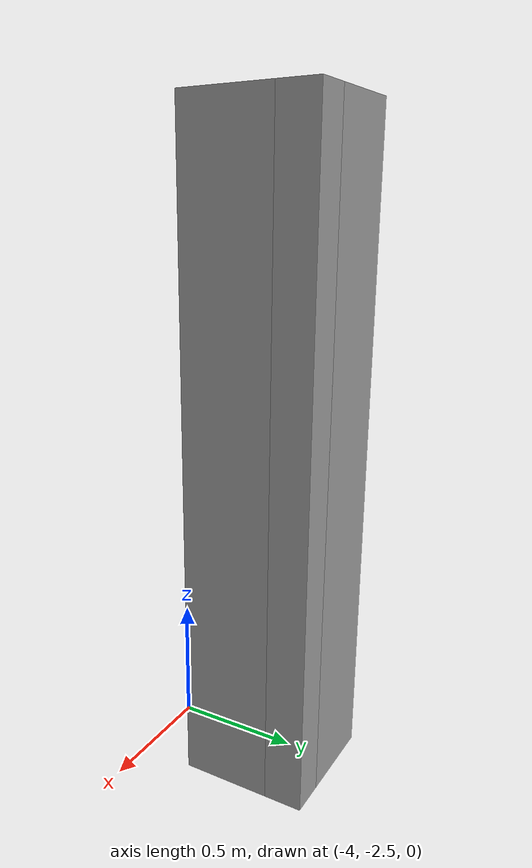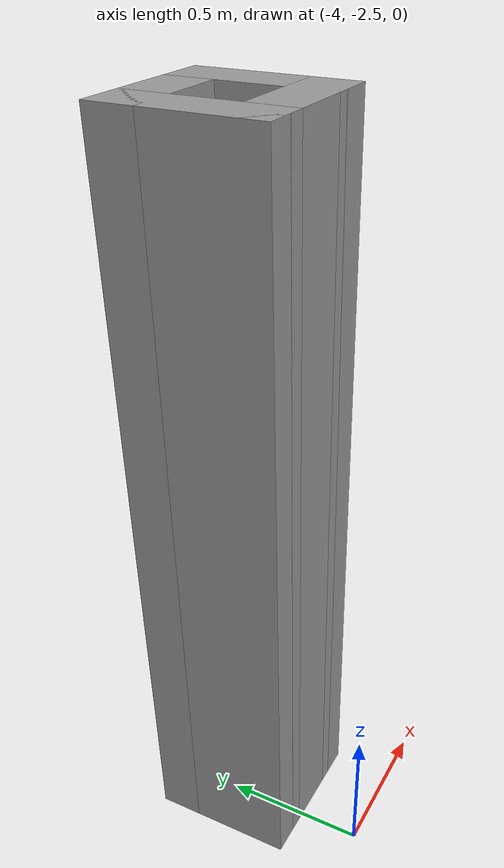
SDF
<?xml version='1.0'?>
<sdf version='1.6'>
  <model name='object_2'>
    <pose frame=''>-3.925 -2.035 0 0 -0 0</pose>
    <link name='Wall_10'>
      <collision name='Wall_10_Collision'>
        <geometry>
          <box>
            <size>0.5 0.15 2.5</size>
          </box>
        </geometry>
        <pose frame=''>0 0 1.25 0 -0 0</pose>
      </collision>
      <visual name='Wall_10_Visual'>
        <pose frame=''>0 0 1.25 0 -0 0</pose>
        <geometry>
          <box>
            <size>0.5 0.15 2.5</size>
          </box>
        </geometry>
        <material>
          <script>
            <uri>file://media/materials/scripts/gazebo.material</uri>
            <name>Gazebo/Grey</name>
          </script>
          <ambient>1 1 1 1</ambient>
        </material>
      </visual>
      <pose frame=''>0 -0.175 0 0 -0 0</pose>
    </link>
    <link name='Wall_11'>
      <collision name='Wall_11_Collision'>
        <geometry>
          <box>
            <size>0.5 0.15 2.5</size>
          </box>
        </geometry>
        <pose frame=''>0 0 1.25 0 -0 0</pose>
      </collision>
      <visual name='Wall_11_Visual'>
        <pose frame=''>0 0 1.25 0 -0 0</pose>
        <geometry>
          <box>
            <size>0.5 0.15 2.5</size>
          </box>
        </geometry>
        <material>
          <script>
            <uri>file://media/materials/scripts/gazebo.material</uri>
            <name>Gazebo/Grey</name>
          </script>
          <ambient>1 1 1 1</ambient>
        </material>
      </visual>
      <pose frame=''>0.175 0 0 0 -0 1.5708</pose>
    </link>
    <link name='Wall_12'>
      <collision name='Wall_12_Collision'>
        <geometry>
          <box>
            <size>0.5 0.15 2.5</size>
          </box>
        </geometry>
        <pose frame=''>0 0 1.25 0 -0 0</pose>
      </collision>
      <visual name='Wall_12_Visual'>
        <pose frame=''>0 0 1.25 0 -0 0</pose>
        <geometry>
          <box>
            <size>0.5 0.15 2.5</size>
          </box>
        </geometry>
        <material>
          <script>
            <uri>file://media/materials/scripts/gazebo.material</uri>
            <name>Gazebo/Grey</name>
          </script>
          <ambient>1 1 1 1</ambient>
        </material>
      </visual>
      <pose frame=''>0 0.175 0 0 -0 3.14159</pose>
    </link>
    <link name='Wall_9'>
      <collision name='Wall_9_Collision'>
        <geometry>
          <box>
            <size>0.5 0.15 2.5</size>
          </box>
        </geometry>
        <pose frame=''>0 0 1.25 0 -0 0</pose>
      </collision>
      <visual name='Wall_9_Visual'>
        <pose frame=''>0 0 1.25 0 -0 0</pose>
        <geometry>
          <box>
            <size>0.5 0.15 2.5</size>
          </box>
        </geometry>
        <material>
          <script>
            <uri>file://media/materials/scripts/gazebo.material</uri>
            <name>Gazebo/Grey</name>
          </script>
          <ambient>1 1 1 1</ambient>
        </material>
      </visual>
      <pose frame=''>-0.175 0 0 0 0 -1.5708</pose>
    </link>
    <static>1</static>
  </model>
</sdf>
